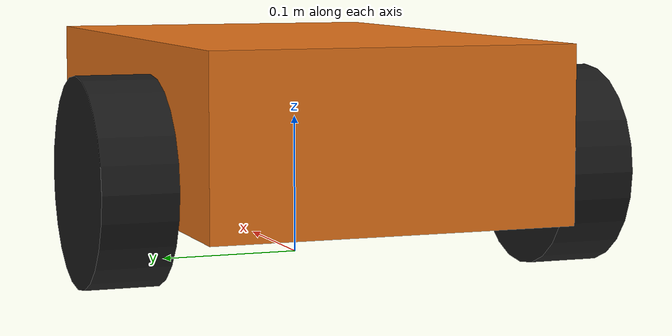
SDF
<?xml version="1.0" ?>
<sdf version="1.6">
  <model name="my_bot">
    <link name="chassis">
      <pose>0 0 0.1 0 0 0</pose>
      <inertial>
        <mass>2.0</mass>
        <inertia><ixx>0.02</ixx><iyy>0.03</iyy><izz>0.04</izz><ixy>0</ixy><ixz>0</ixz><iyz>0</iyz></inertia>
      </inertial>
      <collision name="c">
        <geometry><box><size>0.4 0.25 0.12</size></box></geometry>
      </collision>
      <visual name="v">
        <geometry><box><size>0.4 0.25 0.12</size></box></geometry>
        <material><ambient>0.9 0.45 0.1 1</ambient><diffuse>0.9 0.45 0.1 1</diffuse></material>
      </visual>
    </link>

    <link name="left_wheel">
      <pose>-0.1 0.16 0.07 1.5707 0 0</pose>
      <inertial>
        <mass>0.3</mass>
        <inertia><ixx>0.001</ixx><iyy>0.001</iyy><izz>0.001</izz><ixy>0</ixy><ixz>0</ixz><iyz>0</iyz></inertia>
      </inertial>
      <collision name="c">
        <geometry><cylinder><radius>0.07</radius><length>0.05</length></cylinder></geometry>
      </collision>
      <visual name="v">
        <geometry><cylinder><radius>0.07</radius><length>0.05</length></cylinder></geometry>
        <material><ambient>0.1 0.1 0.1 1</ambient><diffuse>0.1 0.1 0.1 1</diffuse></material>
      </visual>
    </link>

    <link name="right_wheel">
      <pose>-0.1 -0.16 0.07 1.5707 0 0</pose>
      <inertial>
        <mass>0.3</mass>
        <inertia><ixx>0.001</ixx><iyy>0.001</iyy><izz>0.001</izz><ixy>0</ixy><ixz>0</ixz><iyz>0</iyz></inertia>
      </inertial>
      <collision name="c">
        <geometry><cylinder><radius>0.07</radius><length>0.05</length></cylinder></geometry>
      </collision>
      <visual name="v">
        <geometry><cylinder><radius>0.07</radius><length>0.05</length></cylinder></geometry>
        <material><ambient>0.1 0.1 0.1 1</ambient><diffuse>0.1 0.1 0.1 1</diffuse></material>
      </visual>
    </link>

    <link name="caster">
      <pose>0.15 0 0.05 0 0 0</pose>
      <inertial>
        <mass>0.1</mass>
        <inertia><ixx>0.0001</ixx><iyy>0.0001</iyy><izz>0.0001</izz><ixy>0</ixy><ixz>0</ixz><iyz>0</iyz></inertia>
      </inertial>
      <collision name="c">
        <geometry><sphere><radius>0.05</radius></sphere></geometry>
        <surface><friction><ode><mu>0</mu><mu2>0</mu2></ode></friction></surface>
      </collision>
      <visual name="v">
        <geometry><sphere><radius>0.05</radius></sphere></geometry>
        <material><ambient>0.1 0.1 0.1 1</ambient><diffuse>0.1 0.1 0.1 1</diffuse></material>
      </visual>
    </link>

    <joint name="left_wheel_joint" type="revolute">
      <parent>chassis</parent>
      <child>left_wheel</child>
      <axis>
        <xyz>0 1 0</xyz>
        <limit><lower>-1e16</lower><upper>1e16</upper></limit>
      </axis>
    </joint>

    <joint name="right_wheel_joint" type="revolute">
      <parent>chassis</parent>
      <child>right_wheel</child>
      <axis>
        <xyz>0 1 0</xyz>
        <limit><lower>-1e16</lower><upper>1e16</upper></limit>
      </axis>
    </joint>

    <joint name="caster_joint" type="fixed">
      <parent>chassis</parent>
      <child>caster</child>
    </joint>
  </model>
</sdf>
